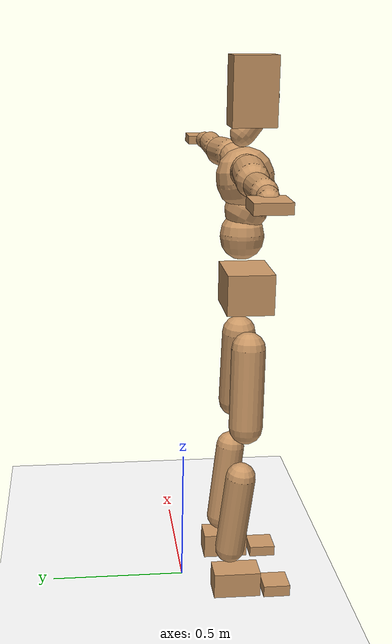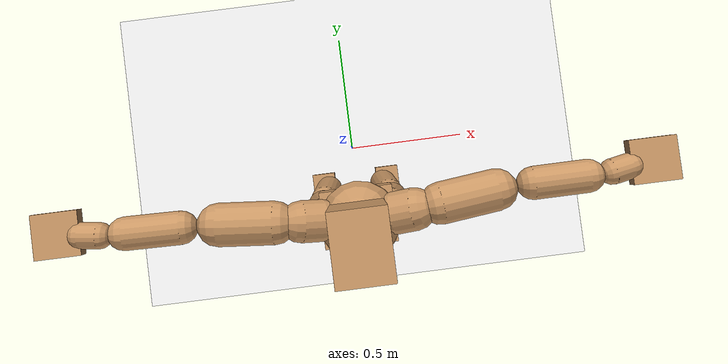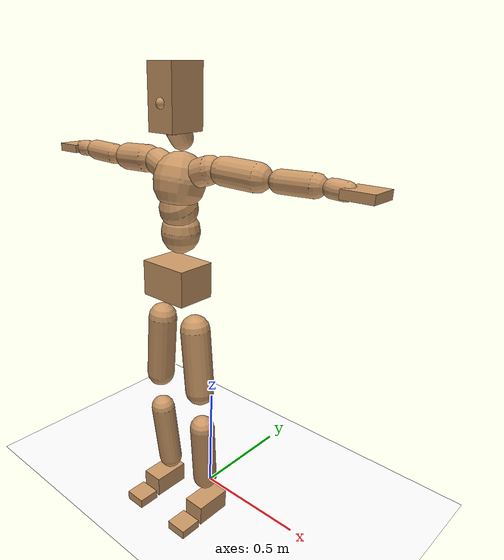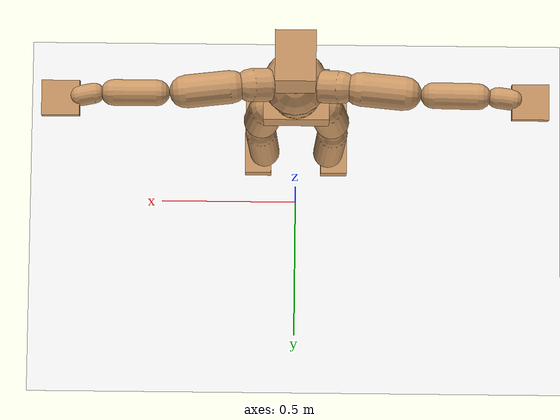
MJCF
<mujoco model="humanoid">
  <option integrator="implicitfast" />

  <visual>
    <global offwidth="1280" offheight="960" />
    <headlight active="1" ambient="0.34 0.34 0.34" diffuse="0.5 0.5 0.5" />
  </visual>

  <default>
    <joint damping="2" stiffness="2" armature="0.01" limited="true" solimplimit="0 .99 .01" />
    <geom condim="1" friction="0.7 0.005 0.0001" solimp=".99 .99 .003" solref="0.015 1" margin="0.001" rgba="0.8 0.6 .4 1" />
    <default class="smplcontact">
      <geom condim="3" friction="1. 0.005 0.0001" solref="0.015 1" solimp="0.98 0.98 0.001" priority="1" />
    </default>
    <default class="stiff_medium">
      <joint stiffness="10" />
    </default>
    <default class="stiff_medium_higher">
      <joint stiffness="50" />
    </default>
    <default class="stiff_high">
      <joint stiffness="100" />
    </default>
  </default>

  <asset>
    <texture type="skybox" builtin="gradient" rgb1="0.99 0.99 0.99" rgb2="0.608 0.828 0.892" width="100" />
    <texture builtin="flat" height="1278" mark="cross" markrgb="1 1 1" name="texgeom" random="0.01" rgb1="0.8 0.6 0.4" rgb2="0.8 0.6 0.4" type="cube" width="127" />
    <texture name="texplane" type="2d" builtin="checker" markrgb="1 1 1" rgb1="0.756 0.772 0.76" rgb2="0.6 0.6 0.6" width="100" height="100" />
    <material name="MatPlane" reflectance="0.5" texture="texplane" texrepeat="1 1" texuniform="true" />
    <material name="geom" texture="texgeom" texuniform="true" />
  </asset>

  <worldbody>
    <light name="tracking_light" pos="0 0 7" dir="0 0 -1" directional="true" cutoff="100" exponent="1" diffuse="1 1 1" specular="0.1 0.1 0.1" mode="trackcom" />
    <camera name="back" pos="0 3 2.4" xyaxes="-1 0 0 0 -1 2" mode="trackcom" />
    <camera name="side" pos="-3 0 2.4" xyaxes="0 -1 0 1 0 2" mode="trackcom" />
    <camera name="front_side" pos="-2.8 -2.8 0.8" xyaxes="0.5 -0.5 0 0.1 0.1 1" mode="trackcom" />
    <geom condim="3" name="floor" pos="0 0 0" rgba="1 1 1 1" size="100 100 .2" type="plane" material="MatPlane" />
    <body name="Pelvis" pos="-0.0018 -0.2233 1.16548" euler="90 0 0">
      <site name="Pelvis" size="0.01" />
      <freejoint name="Pelvis" />
      <geom type="box" pos="-0.0000 -0.0121 -0.0055" size="0.1069 0.0722 0.083" quat="1.0000 0.0000 0.0000 0.0000" density="3165.830099" name="Pelvis" />
      <body name="L_Hip" pos="0.086875 -0.11425 -0.0085">
        <joint name="L_Hip_x" type="hinge" pos="0 0 0" axis="1 0 0" stiffness="14.589841836734694" range="-160.0 22.92" class="stiff_medium" damping="24.10689143795971" armature="0.017703099984976"/>
        <joint name="L_Hip_y" type="hinge" pos="0 0 0" axis="0 1 0" stiffness="14.527612551020406" range="-70.0 70.0" class="stiff_medium" damping="14.262213477061751" armature="0.014001662871370732"/>
        <joint name="L_Hip_z" type="hinge" pos="0 0 0" axis="0 0 1" stiffness="14.532940204081633" range="-28.65 90.0" class="stiff_medium" damping="16.042326803653772" armature="0.01770847782081624"/>
        <geom type="capsule" density="2040.816327" fromto="0.008625 -0.09375 -0.001125 0.03425 -0.37525 -0.0045" size="0.0615" name="L_Hip" />
        <body name="L_Knee" pos="0.042875 -0.469 -0.005625">
          <joint name="L_Knee_x" type="hinge" pos="0 0 0" axis="1 0 0" range="-5.16 171.89" damping="12.427866473289082" armature="0.016955687393418732" stiffness="2.8466087346938775"/>
          <joint name="L_Knee_y" type="hinge" pos="0 0 0" axis="0 1 0" range="-4.58 6.88" damping="11.13194859971676" armature="0.013404538190087162" stiffness="2.888953489795919"/>
          <joint name="L_Knee_z" type="hinge" pos="0 0 0" axis="0 0 1" range="-6.88 4.58" damping="12.396032357314198" armature="0.016980355499687946" stiffness="2.8279299387755104"/>
          <geom type="capsule" density="1234.567901" fromto="-0.003375 -0.0995 -0.010875 -0.013625 -0.398 -0.04375" size="0.0541" name="L_Knee" />
          <body name="L_Ankle" pos="-0.017 -0.4975 -0.054625">
            <joint name="L_Ankle_x" type="hinge" pos="0 0 0" axis="1 0 0" range="-45.84 45.84" class="stiff_medium" damping="7.851672460897963" armature="0.01369972454071633" stiffness="12.5"/>
            <joint name="L_Ankle_y" type="hinge" pos="0 0 0" axis="0 1 0" range="-74.48 22.92" class="stiff_medium" damping="3.90606547180543" armature="0.013562086640027178" stiffness="12.5"/>
            <joint name="L_Ankle_z" type="hinge" pos="0 0 0" axis="0 0 1" range="-4.58 4.58" class="stiff_medium" damping="7.548153538649344" armature="0.01266102707622769" stiffness="12.5"/>
            <geom type="box" pos="0.029125 -0.029875 0.03025" size="0.0483 0.0464 0.085" quat="1.0000 0.0000 0.0000 0.0000" density="449.071558" name="L_Ankle" class="smplcontact" />
            <body name="L_Toe" pos="0.033 -0.06975 0.149125">
              <joint name="L_Toe_x" type="hinge" pos="0 0 0" axis="1 0 0" range="-91.67 22.92" armature="0.012138557001781325" damping="2.4635905708722508" stiffness="2.5"/>
              <joint name="L_Toe_y" type="hinge" pos="0 0 0" axis="0 1 0" range="-4.58 4.58" armature="0.011506786054687943" damping="2.398623152423901" stiffness="2.5"/>
              <joint name="L_Toe_z" type="hinge" pos="0 0 0" axis="0 0 1" range="-4.58 4.58" armature="0.010229379204579194" damping="2.2615679521715895" stiffness="2.5"/>
              <geom type="box" pos="-0.00375 0.006875 0.031" size="0.0478 0.02 0.0496" quat="1.0000 0.0000 0.0000 0.0000" density="423.206892" name="L_Toe" class="smplcontact" />
            </body>
          </body>
        </body>
      </body>
      <body name="R_Hip" pos="-0.084625 -0.113125 -0.005375">
        <joint name="R_Hip_x" type="hinge" pos="0 0 0" axis="1 0 0" stiffness="14.589841836734694" range="-160.0 22.92" class="stiff_medium" damping="24.10689143795971" armature="0.017703099984976"/>
        <joint name="R_Hip_y" type="hinge" pos="0 0 0" axis="0 1 0" stiffness="14.527612551020406" range="-70.0 70.0" class="stiff_medium" damping="14.262213477061751" armature="0.014001662871370732"/>
        <joint name="R_Hip_z" type="hinge" pos="0 0 0" axis="0 0 1" stiffness="14.532940204081633" range="-90.0 28.65" class="stiff_medium" damping="16.042326803653772" armature="0.01770847782081624"/>
        <geom type="capsule" density="2040.816327" fromto="-0.009625 -0.095625 -0.00225 -0.03825 -0.382625 -0.008875" size="0.0606" name="R_Hip" />
        <body name="R_Knee" pos="-0.047875 -0.47825 -0.011125">
          <joint name="R_Knee_x" type="hinge" pos="0 0 0" axis="1 0 0" range="-5.16 171.89" damping="12.427866473289082" armature="0.016955687393418732" stiffness="2.8466087346938775"/>
          <joint name="R_Knee_y" type="hinge" pos="0 0 0" axis="0 1 0" range="-6.88 4.58" damping="11.13194859971676" armature="0.013404538190087162" stiffness="2.888953489795919"/>
          <joint name="R_Knee_z" type="hinge" pos="0 0 0" axis="0 0 1" range="-4.58 6.88" damping="12.396032357314198" armature="0.016980355499687946" stiffness="2.8279299387755104"/>
          <geom type="capsule" density="1234.567901" fromto="0.004 -0.099625 -0.010625 0.01575 -0.398375 -0.04225" size="0.0541" name="R_Knee" />
          <body name="R_Ankle" pos="0.01975 -0.498 -0.052875">
            <joint name="R_Ankle_x" type="hinge" pos="0 0 0" axis="1 0 0" range="-45.84 45.84" class="stiff_medium" damping="7.851672460897963" armature="0.01369972454071633" stiffness="12.5"/>
            <joint name="R_Ankle_y" type="hinge" pos="0 0 0" axis="0 1 0" range="-22.92 74.48" class="stiff_medium" damping="3.90606547180543" armature="0.013562086640027178" stiffness="12.5"/>
            <joint name="R_Ankle_z" type="hinge" pos="0 0 0" axis="0 0 1" range="-4.58 4.58" class="stiff_medium" damping="7.548153538649344" armature="0.01266102707622769" stiffness="12.5"/>
            <geom type="box" pos="-0.0265 -0.02175 0.032" size="0.0483 0.0478 0.0865" quat="1.0000 0.0000 0.0000 0.0000" density="434.700981" name="R_Ankle" class="smplcontact" />
            <body name="R_Toe" pos="-0.03175 -0.060125 0.154125">
              <joint name="R_Toe_x" type="hinge" pos="0 0 0" axis="1 0 0" range="-91.67 22.92" armature="0.012138557001781325" damping="2.4635905708722508" stiffness="2.5"/>
              <joint name="R_Toe_y" type="hinge" pos="0 0 0" axis="0 1 0" range="-4.58 4.58" armature="0.011506786054687943" damping="2.398623152423901" stiffness="2.5"/>
              <joint name="R_Toe_z" type="hinge" pos="0 0 0" axis="0 0 1" range="-4.58 4.58" armature="0.010229379204579194" damping="2.2615679521715895" stiffness="2.5"/>
              <geom type="box" pos="0.00525 0.005625 0.028375" size="0.0479 0.0216 0.0493" quat="1.0000 0.0000 0.0000 0.0000" density="407.384095" name="R_Toe" class="smplcontact" />
            </body>
          </body>
        </body>
      </body>
      <body name="Torso" pos="-0.0025 0.109 -0.0267">
        <joint name="Torso_x" type="hinge" pos="0 0 0" axis="1 0 0" range="-25.78 57.3" class="stiff_medium" damping="14.377725126950708" armature="0.0095189298228172" stiffness="9.651831020408164"/>
        <joint name="Torso_y" type="hinge" pos="0 0 0" axis="0 1 0" range="-57.3 57.3" class="stiff_high" damping="17.04728120076114" armature="0.0074895417033783804" stiffness="97.00519999999999"/>
        <joint name="Torso_z" type="hinge" pos="0 0 0" axis="0 0 1" range="-34.38 34.38" class="stiff_high" damping="18.56536513512957" armature="0.008825226346331875" stiffness="97.63851063829787"/>
        <geom type="capsule" density="2040.816327" fromto="0.0025 0.0608 0.0005 0.003 0.0743 0.0006" size="0.0769" name="Torso" />
        <body name="Spine" pos="0.0055 0.1352 0.0011">
          <joint name="Spine_x" type="hinge" pos="0 0 0" axis="1 0 0" stiffness="9.58583163265306" range="-25.78 57.3" class="stiff_medium" damping="14.269183612083731" armature="0.009440303089812753"/>
          <joint name="Spine_y" type="hinge" pos="0 0 0" axis="0 1 0" stiffness="9.576922244897958" range="-57.3 57.3" class="stiff_high" damping="6.767385718688831" armature="0.007471983870182018"/>
          <joint name="Spine_z" type="hinge" pos="0 0 0" axis="0 0 1" stiffness="19.01161469387755" range="-34.38 34.38" class="stiff_high" damping="10.689541255547075" armature="0.008347696197381863"/>
          <geom type="capsule" density="2040.816327" fromto="0.0007 0.0238 0.0114 0.0008 0.0291 0.014" size="0.0755" name="Spine" />
          <body name="Chest" pos="0.0015 0.0529 0.0254">
            <joint name="Chest_x" type="hinge" pos="0 0 0" axis="1 0 0" stiffness="9.387211020408163" range="-25.78 57.3" class="stiff_medium" damping="14.087997898862074" armature="0.009396788619791426"/>
            <joint name="Chest_y" type="hinge" pos="0 0 0" axis="0 1 0" stiffness="8.88616191489362" range="-57.3 57.3" class="stiff_high" damping="6.516169394016512" armature="0.007466043829259932"/>
            <joint name="Chest_z" type="hinge" pos="0 0 0" axis="0 0 1" stiffness="18.95676244897959" range="-34.38 34.38" class="stiff_high" damping="10.53982249103985" armature="0.008138979020284567"/>
            <geom type="capsule" density="2040.816327" fromto="-0.0009 0.0682 -0.0173 -0.001 0.0833 -0.0212" size="0.1002" name="Chest" />
            <body name="Neck" pos="-0.0028 0.2139 -0.0429">
              <joint name="Neck_x" type="hinge" pos="0 0 0" axis="1 0 0" range="-28.65 57.3" class="stiff_medium_higher" damping="9.999999999999991" armature="0.009999999999999983" stiffness="50.0"/>
              <joint name="Neck_y" type="hinge" pos="0 0 0" axis="0 1 0" range="-40.11 40.11" class="stiff_medium_higher" damping="10.0" armature="0.01" stiffness="50.0"/>
              <joint name="Neck_z" type="hinge" pos="0 0 0" axis="0 0 1" range="-40.11 40.11" class="stiff_medium_higher" damping="9.999999999999998" armature="0.009999999999999995" stiffness="50.0"/>
              <geom type="capsule" density="1000" fromto="0.001 0.013 0.0103 0.0041 0.052 0.0411" size="0.0436" name="Neck" />
              <body name="Head" pos="0.0052 0.065 0.0513">
                <joint name="Head_x" type="hinge" pos="0 0 0" axis="1 0 0" range="-28.65 57.3" class="stiff_medium_higher" damping="1.9999999999999982" armature="0.009999999999999983" stiffness="50.0"/>
                <joint name="Head_y" type="hinge" pos="0 0 0" axis="0 1 0" range="-40.11 40.11" class="stiff_medium_higher" damping="1.9999999999999998" armature="0.009999999999999998" stiffness="50.0"/>
                <joint name="Head_z" type="hinge" pos="0 0 0" axis="0 0 1" range="-40.11 40.11" class="stiff_medium_higher" damping="1.9999999999999978" armature="0.00999999999999998" stiffness="50.0"/>
                <geom type="box" pos="-0.0042 0.0876 -0.0116" size="0.0606 0.1154 0.076" quat="1.0000 0.0000 0.0000 0.0000" density="1018.069894" name="Head" />
                <geom type="capsule" name="nose" size="0.02 0.01" pos="0 0.07 0.05" quat="1 0 0 0" mass="0" contype="0" conaffinity="0" />
              </body>
            </body>
            <body name="L_Thorax" pos="0.069935 0.108009 -0.0302637">
              <joint name="L_Thorax_x" type="hinge" pos="0 0 0" axis="1 0 0" range="-10.89 4.58" class="stiff_medium_higher" damping="16.5036744293642" armature="0.008237289712880607" stiffness="41.33205204081632"/>
              <joint name="L_Thorax_y" type="hinge" pos="0 0 0" axis="0 1 0" range="-28.65 17.19" class="stiff_medium_higher" damping="15.615380485833974" armature="0.007397181758642919" stiffness="41.2049"/>
              <joint name="L_Thorax_z" type="hinge" pos="0 0 0" axis="0 0 1" range="-31.51 40.11" class="stiff_medium_higher" damping="15.614845288813928" armature="0.007396422580499298" stiffness="41.206304591836734"/>
              <geom type="capsule" density="1000" fromto="0.0161525 0.00541375 -0.0015975 0.06461 0.021655 -0.00630125" size="0.0521" name="L_Thorax" />
              <body name="L_Shoulder" pos="0.0807625 0.0270687 -0.00789875">
                <joint name="L_Shoulder_x" type="hinge" pos="0 0 0" axis="1 0 0" range="-97.4 97.4" class="stiff_medium" damping="5.053222703168411" armature="0.008561219507331026" stiffness="8.28511887755102"/>
                <joint name="L_Shoulder_y" type="hinge" pos="0 0 0" axis="0 1 0" range="-108.86 80.21" class="stiff_medium" damping="4.696052433643628" armature="0.007424828192243076" stiffness="8.25043724489796"/>
                <joint name="L_Shoulder_z" type="hinge" pos="0 0 0" axis="0 0 1" range="-97.4 85.94" class="stiff_medium" damping="4.696316861704075" armature="0.007423822707357089" stiffness="8.252483979591837"/>
                <geom type="capsule" density="1000" fromto="0.0460612 -0.0023075 -0.00488125 0.184334 -0.0090525 -0.019525" size="0.0517" name="L_Shoulder" />
                <body name="L_Elbow" pos="0.230395 -0.01136 -0.0244062">
                  <joint name="L_Elbow_x" type="hinge" pos="0 0 0" axis="1 0 0" range="-17.19 4.58" damping="4.357905906305451" armature="0.009089595760700066" stiffness="1.6714797346938777"/>
                  <joint name="L_Elbow_y" type="hinge" pos="0 0 0" axis="0 1 0" range="-180.0 17.19" damping="3.9739600722787487" armature="0.007559999182253768" stiffness="1.6711492448979592"/>
                  <joint name="L_Elbow_z" type="hinge" pos="0 0 0" axis="0 0 1" range="-100.84 4.58" damping="3.973240806942331" armature="0.0075547215269742085" stiffness="1.671711387755102"/>
                  <geom type="capsule" density="1000" fromto="0.0441975 0.0015975 -0.0001775 0.176967 0.00639 -0.00079875" size="0.0405" name="L_Elbow" />
                  <body name="L_Wrist" pos="0.221165 0.0079875 -0.001065">
                    <joint name="L_Wrist_x" type="hinge" pos="0 0 0" axis="1 0 0" range="-180.0 22.92" armature="0.009268388983615995" damping="1.795344155935763" stiffness="1.738846224489796"/>
                    <joint name="L_Wrist_y" type="hinge" pos="0 0 0" axis="0 1 0" range="-17.19 17.19" armature="0.008039907338787787" damping="1.6695812073111398" stiffness="1.7335407551020405"/>
                    <joint name="L_Wrist_z" type="hinge" pos="0 0 0" axis="0 0 1" range="-22.92 22.92" armature="0.007970783232335294" damping="1.6634142634626172" stiffness="1.7356807551020408"/>
                    <geom type="capsule" density="1000" fromto="0.01491 -0.00142 -0.0026625 0.05964 -0.00576875 -0.01065" size="0.0318" name="L_Wrist" class="smplcontact" />
                    <body name="L_Hand" pos="0.07455 -0.0072775 -0.0132237">
                      <joint name="L_Hand_x" type="hinge" pos="0 0 0" axis="1 0 0" range="-17.19 17.19" armature="0.009907489981019016" damping="1.8754085109863285" stiffness="1.7749990612244897"/>
                      <joint name="L_Hand_y" type="hinge" pos="0 0 0" axis="0 1 0" range="-51.57 51.57" armature="0.008881214164335" damping="1.7756208279347816" stiffness="1.7749990408163265"/>
                      <joint name="L_Hand_z" type="hinge" pos="0 0 0" axis="0 0 1" range="-91.67 91.67" armature="0.008607646402110885" damping="1.7480597104275597" stiffness="1.7749990000000002"/>
                      <geom type="box" pos="0.0437537 0.0008875 -0.0051475" size="0.0585 0.0158 0.0538" quat="1.0000 0.0000 0.0000 0.0000" density="400.552564" name="L_Hand" class="smplcontact" />
                    </body>
                  </body>
                </body>
              </body>
            </body>
            <body name="R_Thorax" pos="-0.0725975 0.105435 -0.0342575">
              <joint name="R_Thorax_x" type="hinge" pos="0 0 0" axis="1 0 0" range="-10.89 4.58" class="stiff_medium_higher" damping="16.5036744293642" armature="0.008237289712880607" stiffness="41.33205204081632"/>
              <joint name="R_Thorax_y" type="hinge" pos="0 0 0" axis="0 1 0" range="-17.19 28.65" class="stiff_medium_higher" damping="15.615380485833974" armature="0.007397181758642919" stiffness="41.2049"/>
              <joint name="R_Thorax_z" type="hinge" pos="0 0 0" axis="0 0 1" range="-40.11 31.51" class="stiff_medium_higher" damping="15.614845288813928" armature="0.007396422580499298" stiffness="41.206304591836734"/>
              <geom type="capsule" density="1000" fromto="-0.01704 0.00576875 -0.0015975 -0.06816 0.023075 -0.00647875" size="0.0511" name="R_Thorax" />
              <body name="R_Shoulder" pos="-0.0852 0.0289325 -0.00807625">
                <joint name="R_Shoulder_x" type="hinge" pos="0 0 0" axis="1 0 0" range="-97.4 97.4" class="stiff_medium" damping="5.053222703168411" armature="0.008561219507331026" stiffness="8.28511887755102"/>
                <joint name="R_Shoulder_y" type="hinge" pos="0 0 0" axis="0 1 0" range="-80.21 108.86" class="stiff_medium" damping="4.696052433643628" armature="0.007424828192243076" stiffness="8.25043724489796"/>
                <joint name="R_Shoulder_z" type="hinge" pos="0 0 0" axis="0 0 1" range="-85.94 97.4" class="stiff_medium" damping="4.696316861704075" armature="0.007423822707357089" stiffness="8.252483979591837"/>
                <geom type="capsule" density="1000" fromto="-0.0449963 -0.00239625 -0.00381625 -0.180163 -0.00949625 -0.0151763" size="0.0531" name="R_Shoulder" />
                <body name="R_Elbow" pos="-0.225159 -0.0118037 -0.0189925">
                  <joint name="R_Elbow_x" type="hinge" pos="0 0 0" axis="1 0 0" range="-17.19 4.58" damping="4.357905906305451" armature="0.009089595760700066" stiffness="1.6714797346938777"/>
                  <joint name="R_Elbow_y" type="hinge" pos="0 0 0" axis="0 1 0" range="-17.19 180.0" damping="3.9739600722787487" armature="0.007559999182253768" stiffness="1.6711492448979592"/>
                  <joint name="R_Elbow_z" type="hinge" pos="0 0 0" axis="0 0 1" range="-4.58 100.84" damping="3.973240806942331" armature="0.0075547215269742085" stiffness="1.671711387755102"/>
                  <geom type="capsule" density="1000" fromto="-0.0453512 0.00142 -0.00097625 -0.181227 0.0055025 -0.003905" size="0.0408" name="R_Elbow" />
                  <body name="R_Wrist" pos="-0.226579 0.0069225 -0.00497">
                    <joint name="R_Wrist_x" type="hinge" pos="0 0 0" axis="1 0 0" range="-180.0 22.92" armature="0.009268388983615995" damping="1.795344155935763" stiffness="1.738846224489796"/>
                    <joint name="R_Wrist_y" type="hinge" pos="0 0 0" axis="0 1 0" range="-17.19 17.19" armature="0.008039907338787787" damping="1.6695812073111398" stiffness="1.7335407551020405"/>
                    <joint name="R_Wrist_z" type="hinge" pos="0 0 0" axis="0 0 1" range="-22.92 22.92" armature="0.007970783232335294" damping="1.6634142634626172" stiffness="1.7356807551020408"/>
                    <geom type="capsule" density="1000" fromto="-0.0149987 -0.001065 -0.00186375 -0.0600837 -0.00434875 -0.00736625" size="0.0326" name="R_Wrist" class="smplcontact" />
                    <body name="R_Hand" pos="-0.0750825 -0.00541375 -0.00914125">
                      <joint name="R_Hand_x" type="hinge" pos="0 0 0" axis="1 0 0" range="-17.19 17.19" armature="0.009907489981019016" damping="1.8754085109863285" stiffness="1.7749990612244897"/>
                      <joint name="R_Hand_y" type="hinge" pos="0 0 0" axis="0 1 0" range="-51.57 51.57" armature="0.008881214164335" damping="1.7756208279347816" stiffness="1.7749990408163265"/>
                      <joint name="R_Hand_z" type="hinge" pos="0 0 0" axis="0 0 1" range="-91.67 91.67" armature="0.008607646402110885" damping="1.7480597104275597" stiffness="1.7749990000000002"/>
                      <geom type="box" pos="-0.0410025 -0.00079875 -0.00701125" size="0.0569 0.0164 0.0546" quat="1.0000 0.0000 0.0000 0.0000" density="403.679611" name="R_Hand" class="smplcontact" />
                    </body>
                  </body>
                </body>
              </body>
            </body>
          </body>
        </body>
      </body>
    </body>
  </worldbody>
  <actuator>
    <general name="L_Hip_x" joint="L_Hip_x" biastype="affine" gainprm="419.21001901187765" biasprm="-314.15541988928595 -262.6171530612245 -3.2142521917279616" ctrllimited="true" ctrlrange="-1 1" forcerange="-525.234306122449 525.234306122449" />
    <general name="L_Hip_y" joint="L_Hip_y" biastype="affine" gainprm="319.47888605139207" biasprm="0.0 -261.4970259183673 -2.8524426954123503" ctrllimited="true" ctrlrange="-1 1" forcerange="-522.9940518367346 522.9940518367346" />
    <general name="L_Hip_z" joint="L_Hip_z" biastype="affine" gainprm="270.857650054052" biasprm="140.0515535677715 -261.5929236734694 -3.2084653607307545" ctrllimited="true" ctrlrange="-1 1" forcerange="-523.1858473469388 523.1858473469388" />
    <general name="L_Knee_x" joint="L_Knee_x" biastype="affine" gainprm="395.8344512323349" biasprm="372.7618077038531 -256.194786122449 -3.1069666183222706" ctrllimited="true" ctrlrange="-1 1" forcerange="-512.389572244898 512.389572244898" />
    <general name="L_Knee_y" joint="L_Knee_y" biastype="affine" gainprm="26.002496647202126" biasprm="5.218651159560636 -260.0058140816327 -2.78298714992919" ctrllimited="true" ctrlrange="-1 1" forcerange="-520.0116281632654 520.0116281632654" />
    <general name="L_Knee_z" joint="L_Knee_z" biastype="affine" gainprm="25.45324423230062" biasprm="-5.108417254301171 -254.51369448979594 -3.0990080893285494" ctrllimited="true" ctrlrange="-1 1" forcerange="-509.0273889795919 509.0273889795919" />
    <general name="L_Ankle_x" joint="L_Ankle_x" biastype="affine" gainprm="90.00662952534759" biasprm="0.0 -112.5 -2.6172241536326544" ctrllimited="true" ctrlrange="-1 1" forcerange="-225.0 225.0" />
    <general name="L_Ankle_y" joint="L_Ankle_y" biastype="affine" gainprm="95.62222639363935" biasprm="-50.61891163096555 -112.5 -2.6040436478702866" ctrllimited="true" ctrlrange="-1 1" forcerange="-225.0 225.0" />
    <general name="L_Ankle_z" joint="L_Ankle_z" biastype="affine" gainprm="8.992808970900782" biasprm="0.0 -112.5 -2.5160511795497813" ctrllimited="true" ctrlrange="-1 1" forcerange="-225.0 225.0" />
    <general name="L_Toe_x" joint="L_Toe_x" biastype="affine" gainprm="89.99877554371359" biasprm="-53.996123733574564 -90.0 -0.9854362283489003" ctrllimited="true" ctrlrange="-1 1" forcerange="-180.0 180.0" />
    <general name="L_Toe_y" joint="L_Toe_y" biastype="affine" gainprm="7.194247176720626" biasprm="0.0 -90.0 -0.9594492609695604" ctrllimited="true" ctrlrange="-1 1" forcerange="-180.0 180.0" />
    <general name="L_Toe_z" joint="L_Toe_z" biastype="affine" gainprm="7.194247176720626" biasprm="0.0 -90.0 -0.9046271808686358" ctrllimited="true" ctrlrange="-1 1" forcerange="-180.0 180.0" />
    <general name="R_Hip_x" joint="R_Hip_x" biastype="affine" gainprm="419.21001901187765" biasprm="-314.15541988928595 -262.6171530612245 -3.2142521917279616" ctrllimited="true" ctrlrange="-1 1" forcerange="-525.234306122449 525.234306122449" />
    <general name="R_Hip_y" joint="R_Hip_y" biastype="affine" gainprm="319.47888605139207" biasprm="0.0 -261.4970259183673 -2.8524426954123503" ctrllimited="true" ctrlrange="-1 1" forcerange="-522.9940518367346 522.9940518367346" />
    <general name="R_Hip_z" joint="R_Hip_z" biastype="affine" gainprm="270.857650054052" biasprm="-140.0515535677715 -261.5929236734694 -3.2084653607307545" ctrllimited="true" ctrlrange="-1 1" forcerange="-523.1858473469388 523.1858473469388" />
    <general name="R_Knee_x" joint="R_Knee_x" biastype="affine" gainprm="395.8344512323349" biasprm="372.7618077038531 -256.194786122449 -3.1069666183222706" ctrllimited="true" ctrlrange="-1 1" forcerange="-512.389572244898 512.389572244898" />
    <general name="R_Knee_y" joint="R_Knee_y" biastype="affine" gainprm="26.002496647202126" biasprm="-5.218651159560636 -260.0058140816327 -2.78298714992919" ctrllimited="true" ctrlrange="-1 1" forcerange="-520.0116281632654 520.0116281632654" />
    <general name="R_Knee_z" joint="R_Knee_z" biastype="affine" gainprm="25.45324423230062" biasprm="5.108417254301171 -254.51369448979594 -3.0990080893285494" ctrllimited="true" ctrlrange="-1 1" forcerange="-509.0273889795919 509.0273889795919" />
    <general name="R_Ankle_x" joint="R_Ankle_x" biastype="affine" gainprm="90.00662952534759" biasprm="0.0 -112.5 -2.6172241536326544" ctrllimited="true" ctrlrange="-1 1" forcerange="-225.0 225.0" />
    <general name="R_Ankle_y" joint="R_Ankle_y" biastype="affine" gainprm="95.62222639363935" biasprm="50.61891163096555 -112.5 -2.6040436478702866" ctrllimited="true" ctrlrange="-1 1" forcerange="-225.0 225.0" />
    <general name="R_Ankle_z" joint="R_Ankle_z" biastype="affine" gainprm="8.992808970900782" biasprm="0.0 -112.5 -2.5160511795497813" ctrllimited="true" ctrlrange="-1 1" forcerange="-225.0 225.0" />
    <general name="R_Toe_x" joint="R_Toe_x" biastype="affine" gainprm="89.99877554371359" biasprm="-53.996123733574564 -90.0 -0.9854362283489003" ctrllimited="true" ctrlrange="-1 1" forcerange="-180.0 180.0" />
    <general name="R_Toe_y" joint="R_Toe_y" biastype="affine" gainprm="7.194247176720626" biasprm="0.0 -90.0 -0.9594492609695604" ctrllimited="true" ctrlrange="-1 1" forcerange="-180.0 180.0" />
    <general name="R_Toe_z" joint="R_Toe_z" biastype="affine" gainprm="7.194247176720626" biasprm="0.0 -90.0 -0.9046271808686358" ctrllimited="true" ctrlrange="-1 1" forcerange="-180.0 180.0" />
    <general name="Torso_x" joint="Torso_x" biastype="affine" gainprm="167.94412321258363" biasprm="63.71688449278569 -231.64394448979593 -3.834060033853522" ctrllimited="true" ctrlrange="-1 1" forcerange="-347.4659167346939 347.4659167346939" />
    <general name="Torso_y" joint="Torso_y" biastype="affine" gainprm="232.82962929152654" biasprm="0.0 -232.81248 -3.409456240152228" ctrllimited="true" ctrlrange="-1 1" forcerange="-349.21871999999996 349.21871999999996" />
    <general name="Torso_z" joint="Torso_z" biastype="affine" gainprm="140.60981207084777" biasprm="0.0 -234.33242553191488 -3.713073027025914" ctrllimited="true" ctrlrange="-1 1" forcerange="-351.49863829787233 351.49863829787233" />
    <general name="Spine_x" joint="Spine_x" biastype="affine" gainprm="166.79571838808337" biasprm="63.28118733259974 -230.05995918367344 -3.805115629888995" ctrllimited="true" ctrlrange="-1 1" forcerange="-345.0899387755102 345.0899387755102" />
    <general name="Spine_y" joint="Spine_y" biastype="affine" gainprm="229.8630646638908" biasprm="0.0 -229.846133877551 -3.3836928593444155" ctrllimited="true" ctrlrange="-1 1" forcerange="-344.76920081632653 344.76920081632653" />
    <general name="Spine_z" joint="Spine_z" biastype="affine" gainprm="136.89370883443928" biasprm="0.0 -228.1393763265306 -3.563180418515692" ctrllimited="true" ctrlrange="-1 1" forcerange="-342.2090644897959 342.2090644897959" />
    <general name="Chest_x" joint="Chest_x" biastype="affine" gainprm="163.33967315636679" biasprm="61.969986734336544 -225.29306448979594 -3.756799439696553" ctrllimited="true" ctrlrange="-1 1" forcerange="-337.9395967346939 337.9395967346939" />
    <general name="Chest_y" joint="Chest_y" biastype="affine" gainprm="213.2835955669555" biasprm="0.0 -213.26788595744688 -3.258084697008256" ctrllimited="true" ctrlrange="-1 1" forcerange="-319.9018289361703 319.9018289361703" />
    <general name="Chest_z" joint="Chest_z" biastype="affine" gainprm="136.49874357962614" biasprm="0.0 -227.48114938775507 -3.51327416367995" ctrllimited="true" ctrlrange="-1 1" forcerange="-341.2217240816326 341.2217240816326" />
    <general name="Neck_x" joint="Neck_x" biastype="affine" gainprm="27.00198885760427" biasprm="9.000662952534757 -36.0 -0.7999999999999994" ctrllimited="true" ctrlrange="-1 1" forcerange="-72.0 72.0" />
    <general name="Neck_y" joint="Neck_y" biastype="affine" gainprm="25.20185626709732" biasprm="0.0 -36.0 -0.8" ctrllimited="true" ctrlrange="-1 1" forcerange="-72.0 72.0" />
    <general name="Neck_z" joint="Neck_z" biastype="affine" gainprm="25.20185626709732" biasprm="0.0 -36.0 -0.7999999999999998" ctrllimited="true" ctrlrange="-1 1" forcerange="-72.0 72.0" />
    <general name="Head_x" joint="Head_x" biastype="affine" gainprm="18.001325905069514" biasprm="6.000441968356505 -24.0 -0.7999999999999994" ctrllimited="true" ctrlrange="-1 1" forcerange="-48.0 48.0" />
    <general name="Head_y" joint="Head_y" biastype="affine" gainprm="16.801237511398213" biasprm="0.0 -24.0 -0.7999999999999999" ctrllimited="true" ctrlrange="-1 1" forcerange="-48.0 48.0" />
    <general name="Head_z" joint="Head_z" biastype="affine" gainprm="16.801237511398213" biasprm="0.0 -24.0 -0.7999999999999992" ctrllimited="true" ctrlrange="-1 1" forcerange="-48.0 48.0" />
    <general name="L_Thorax_x" joint="L_Thorax_x" biastype="affine" gainprm="13.391705647542844" biasprm="-5.462292348803839 -99.19692489795918 -1.320293954349136" ctrllimited="true" ctrlrange="-1 1" forcerange="-198.39384979591836 198.39384979591836" />
    <general name="L_Thorax_y" joint="L_Thorax_y" biastype="affine" gainprm="39.55961780190927" biasprm="-9.889904450477317 -98.89176 -1.249230438866718" ctrllimited="true" ctrlrange="-1 1" forcerange="-197.78352 197.78352" />
    <general name="L_Thorax_z" joint="L_Thorax_z" biastype="affine" gainprm="61.80969474430838" biasprm="7.4219962971383975 -98.89513102040816 -1.2491876231051142" ctrllimited="true" ctrlrange="-1 1" forcerange="-197.79026204081632 197.79026204081632" />
    <general name="L_Shoulder_x" joint="L_Shoulder_x" biastype="affine" gainprm="67.60460910996468" biasprm="0.0 -39.768570612244886 -1.3475260541782432" ctrllimited="true" ctrlrange="-1 1" forcerange="-79.53714122448977 79.53714122448977" />
    <general name="L_Shoulder_y" joint="L_Shoulder_y" biastype="affine" gainprm="65.34136439993874" biasprm="-9.901253980315465 -39.6020987755102 -1.252280648971634" ctrllimited="true" ctrlrange="-1 1" forcerange="-79.2041975510204 79.2041975510204" />
    <general name="L_Shoulder_z" joint="L_Shoulder_z" biastype="affine" gainprm="63.376831969533896" biasprm="-3.9614840971466134 -39.61192310204081 -1.2523511631210866" ctrllimited="true" ctrlrange="-1 1" forcerange="-79.22384620408162 79.22384620408162" />
    <general name="L_Elbow_x" joint="L_Elbow_x" biastype="affine" gainprm="11.43166310683652" biasprm="-6.621647761929654 -60.17327044897959 -0.6972649450088722" ctrllimited="true" ctrlrange="-1 1" forcerange="-120.34654089795919 120.34654089795919" />
    <general name="L_Elbow_y" joint="L_Elbow_y" biastype="affine" gainprm="103.52613409284974" biasprm="-85.47639277679836 -60.16137281632653 -0.6358336115645998" ctrllimited="true" ctrlrange="-1 1" forcerange="-120.32274563265307 120.32274563265307" />
    <general name="L_Elbow_z" joint="L_Elbow_z" biastype="affine" gainprm="55.364857375302314" biasprm="-50.55417540264278 -60.181609959183675 -0.635718529110773" ctrllimited="true" ctrlrange="-1 1" forcerange="-120.36321991836735 120.36321991836735" />
    <general name="L_Wrist_x" joint="L_Wrist_x" biastype="affine" gainprm="18.475008746127838" biasprm="-14.301470401349109 -10.433077346938775 -0.7181376623743052" ctrllimited="true" ctrlrange="-1 1" forcerange="-20.86615469387755 20.86615469387755" />
    <general name="L_Wrist_y" joint="L_Wrist_y" biastype="affine" gainprm="3.120603210231214" biasprm="0.0 -10.401244530612242 -0.667832482924456" ctrllimited="true" ctrlrange="-1 1" forcerange="-20.802489061224485 20.802489061224485" />
    <general name="L_Wrist_z" joint="L_Wrist_z" biastype="affine" gainprm="4.165940658633199" biasprm="0.0 -10.414084530612245 -0.6653657053850469" ctrllimited="true" ctrlrange="-1 1" forcerange="-20.82816906122449 20.82816906122449" />
    <general name="L_Hand_x" joint="L_Hand_x" biastype="affine" gainprm="3.1952336582294483" biasprm="0.0 -10.649994367346938 -0.7501634043945314" ctrllimited="true" ctrlrange="-1 1" forcerange="-21.299988734693876 21.299988734693876" />
    <general name="L_Hand_y" joint="L_Hand_y" biastype="affine" gainprm="9.585700864476143" biasprm="0.0 -10.64999424489796 -0.7102483311739127" ctrllimited="true" ctrlrange="-1 1" forcerange="-21.29998848979592 21.29998848979592" />
    <general name="L_Hand_z" joint="L_Hand_z" biastype="affine" gainprm="17.03938681481915" biasprm="0.0 -10.649994000000001 -0.6992238841710239" ctrllimited="true" ctrlrange="-1 1" forcerange="-21.299988000000003 21.299988000000003" />
    <general name="R_Thorax_x" joint="R_Thorax_x" biastype="affine" gainprm="13.391705647542844" biasprm="-5.462292348803839 -99.19692489795918 -1.320293954349136" ctrllimited="true" ctrlrange="-1 1" forcerange="-198.39384979591836 198.39384979591836" />
    <general name="R_Thorax_y" joint="R_Thorax_y" biastype="affine" gainprm="39.55961780190927" biasprm="9.889904450477312 -98.89176 -1.249230438866718" ctrllimited="true" ctrlrange="-1 1" forcerange="-197.78352 197.78352" />
    <general name="R_Thorax_z" joint="R_Thorax_z" biastype="affine" gainprm="61.80969474430838" biasprm="-7.4219962971383975 -98.89513102040816 -1.2491876231051142" ctrllimited="true" ctrlrange="-1 1" forcerange="-197.79026204081632 197.79026204081632" />
    <general name="R_Shoulder_x" joint="R_Shoulder_x" biastype="affine" gainprm="67.60460910996468" biasprm="0.0 -39.768570612244886 -1.3475260541782432" ctrllimited="true" ctrlrange="-1 1" forcerange="-79.53714122448977 79.53714122448977" />
    <general name="R_Shoulder_y" joint="R_Shoulder_y" biastype="affine" gainprm="65.34136439993874" biasprm="9.901253980315465 -39.6020987755102 -1.252280648971634" ctrllimited="true" ctrlrange="-1 1" forcerange="-79.2041975510204 79.2041975510204" />
    <general name="R_Shoulder_z" joint="R_Shoulder_z" biastype="affine" gainprm="63.376831969533896" biasprm="3.9614840971466045 -39.61192310204081 -1.2523511631210866" ctrllimited="true" ctrlrange="-1 1" forcerange="-79.22384620408162 79.22384620408162" />
    <general name="R_Elbow_x" joint="R_Elbow_x" biastype="affine" gainprm="11.43166310683652" biasprm="-6.621647761929654 -60.17327044897959 -0.6972649450088722" ctrllimited="true" ctrlrange="-1 1" forcerange="-120.34654089795919 120.34654089795919" />
    <general name="R_Elbow_y" joint="R_Elbow_y" biastype="affine" gainprm="103.52613409284974" biasprm="85.47639277679836 -60.16137281632653 -0.6358336115645998" ctrllimited="true" ctrlrange="-1 1" forcerange="-120.32274563265307 120.32274563265307" />
    <general name="R_Elbow_z" joint="R_Elbow_z" biastype="affine" gainprm="55.364857375302314" biasprm="50.55417540264277 -60.181609959183675 -0.635718529110773" ctrllimited="true" ctrlrange="-1 1" forcerange="-120.36321991836735 120.36321991836735" />
    <general name="R_Wrist_x" joint="R_Wrist_x" biastype="affine" gainprm="18.475008746127838" biasprm="-14.301470401349109 -10.433077346938775 -0.7181376623743052" ctrllimited="true" ctrlrange="-1 1" forcerange="-20.86615469387755 20.86615469387755" />
    <general name="R_Wrist_y" joint="R_Wrist_y" biastype="affine" gainprm="3.120603210231214" biasprm="0.0 -10.401244530612242 -0.667832482924456" ctrllimited="true" ctrlrange="-1 1" forcerange="-20.802489061224485 20.802489061224485" />
    <general name="R_Wrist_z" joint="R_Wrist_z" biastype="affine" gainprm="4.165940658633199" biasprm="0.0 -10.414084530612245 -0.6653657053850469" ctrllimited="true" ctrlrange="-1 1" forcerange="-20.82816906122449 20.82816906122449" />
    <general name="R_Hand_x" joint="R_Hand_x" biastype="affine" gainprm="3.1952336582294483" biasprm="0.0 -10.649994367346938 -0.7501634043945314" ctrllimited="true" ctrlrange="-1 1" forcerange="-21.299988734693876 21.299988734693876" />
    <general name="R_Hand_y" joint="R_Hand_y" biastype="affine" gainprm="9.585700864476143" biasprm="0.0 -10.64999424489796 -0.7102483311739127" ctrllimited="true" ctrlrange="-1 1" forcerange="-21.29998848979592 21.29998848979592" />
    <general name="R_Hand_z" joint="R_Hand_z" biastype="affine" gainprm="17.03938681481915" biasprm="0.0 -10.649994000000001 -0.6992238841710239" ctrllimited="true" ctrlrange="-1 1" forcerange="-21.299988000000003 21.299988000000003" />
  </actuator>
  <contact>
    <exclude body1="Torso" body2="Chest" />
    <exclude body1="Head" body2="Chest" />
    <exclude body1="R_Knee" body2="R_Toe" />
    <exclude body1="R_Knee" body2="L_Ankle" />
    <exclude body1="R_Knee" body2="L_Toe" />
    <exclude body1="L_Knee" body2="L_Toe" />
    <exclude body1="L_Knee" body2="R_Ankle" />
    <exclude body1="L_Knee" body2="R_Toe" />
    <exclude body1="L_Shoulder" body2="Chest" />
    <exclude body1="R_Shoulder" body2="Chest" />
  </contact>
  <sensor>
    <framelinvel name="sensor_Pelvis_framelinvel" objtype="xbody" objname="Pelvis" />
    <framelinvel name="sensor_L_Hip_framelinvel" objtype="xbody" objname="L_Hip" />
    <framelinvel name="sensor_L_Knee_framelinvel" objtype="xbody" objname="L_Knee" />
    <framelinvel name="sensor_L_Ankle_framelinvel" objtype="xbody" objname="L_Ankle" />
    <framelinvel name="sensor_L_Toe_framelinvel" objtype="xbody" objname="L_Toe" />
    <framelinvel name="sensor_R_Hip_framelinvel" objtype="xbody" objname="R_Hip" />
    <framelinvel name="sensor_R_Knee_framelinvel" objtype="xbody" objname="R_Knee" />
    <framelinvel name="sensor_R_Ankle_framelinvel" objtype="xbody" objname="R_Ankle" />
    <framelinvel name="sensor_R_Toe_framelinvel" objtype="xbody" objname="R_Toe" />
    <framelinvel name="sensor_Torso_framelinvel" objtype="xbody" objname="Torso" />
    <framelinvel name="sensor_Spine_framelinvel" objtype="xbody" objname="Spine" />
    <framelinvel name="sensor_Chest_framelinvel" objtype="xbody" objname="Chest" />
    <framelinvel name="sensor_Neck_framelinvel" objtype="xbody" objname="Neck" />
    <framelinvel name="sensor_Head_framelinvel" objtype="xbody" objname="Head" />
    <framelinvel name="sensor_L_Thorax_framelinvel" objtype="xbody" objname="L_Thorax" />
    <framelinvel name="sensor_L_Shoulder_framelinvel" objtype="xbody" objname="L_Shoulder" />
    <framelinvel name="sensor_L_Elbow_framelinvel" objtype="xbody" objname="L_Elbow" />
    <framelinvel name="sensor_L_Wrist_framelinvel" objtype="xbody" objname="L_Wrist" />
    <framelinvel name="sensor_L_Hand_framelinvel" objtype="xbody" objname="L_Hand" />
    <framelinvel name="sensor_R_Thorax_framelinvel" objtype="xbody" objname="R_Thorax" />
    <framelinvel name="sensor_R_Shoulder_framelinvel" objtype="xbody" objname="R_Shoulder" />
    <framelinvel name="sensor_R_Elbow_framelinvel" objtype="xbody" objname="R_Elbow" />
    <framelinvel name="sensor_R_Wrist_framelinvel" objtype="xbody" objname="R_Wrist" />
    <framelinvel name="sensor_R_Hand_framelinvel" objtype="xbody" objname="R_Hand" />
    <frameangvel name="sensor_Pelvis_frameangvel" objtype="xbody" objname="Pelvis" />
    <frameangvel name="sensor_L_Hip_frameangvel" objtype="xbody" objname="L_Hip" />
    <frameangvel name="sensor_L_Knee_frameangvel" objtype="xbody" objname="L_Knee" />
    <frameangvel name="sensor_L_Ankle_frameangvel" objtype="xbody" objname="L_Ankle" />
    <frameangvel name="sensor_L_Toe_frameangvel" objtype="xbody" objname="L_Toe" />
    <frameangvel name="sensor_R_Hip_frameangvel" objtype="xbody" objname="R_Hip" />
    <frameangvel name="sensor_R_Knee_frameangvel" objtype="xbody" objname="R_Knee" />
    <frameangvel name="sensor_R_Ankle_frameangvel" objtype="xbody" objname="R_Ankle" />
    <frameangvel name="sensor_R_Toe_frameangvel" objtype="xbody" objname="R_Toe" />
    <frameangvel name="sensor_Torso_frameangvel" objtype="xbody" objname="Torso" />
    <frameangvel name="sensor_Spine_frameangvel" objtype="xbody" objname="Spine" />
    <frameangvel name="sensor_Chest_frameangvel" objtype="xbody" objname="Chest" />
    <frameangvel name="sensor_Neck_frameangvel" objtype="xbody" objname="Neck" />
    <frameangvel name="sensor_Head_frameangvel" objtype="xbody" objname="Head" />
    <frameangvel name="sensor_L_Thorax_frameangvel" objtype="xbody" objname="L_Thorax" />
    <frameangvel name="sensor_L_Shoulder_frameangvel" objtype="xbody" objname="L_Shoulder" />
    <frameangvel name="sensor_L_Elbow_frameangvel" objtype="xbody" objname="L_Elbow" />
    <frameangvel name="sensor_L_Wrist_frameangvel" objtype="xbody" objname="L_Wrist" />
    <frameangvel name="sensor_L_Hand_frameangvel" objtype="xbody" objname="L_Hand" />
    <frameangvel name="sensor_R_Thorax_frameangvel" objtype="xbody" objname="R_Thorax" />
    <frameangvel name="sensor_R_Shoulder_frameangvel" objtype="xbody" objname="R_Shoulder" />
    <frameangvel name="sensor_R_Elbow_frameangvel" objtype="xbody" objname="R_Elbow" />
    <frameangvel name="sensor_R_Wrist_frameangvel" objtype="xbody" objname="R_Wrist" />
    <frameangvel name="sensor_R_Hand_frameangvel" objtype="xbody" objname="R_Hand" />
    <subtreelinvel name="Chest_subtreelinvel" body="Chest" />
    <gyro name="Pelvis_gyro" site="Pelvis" />
  </sensor>
</mujoco>
